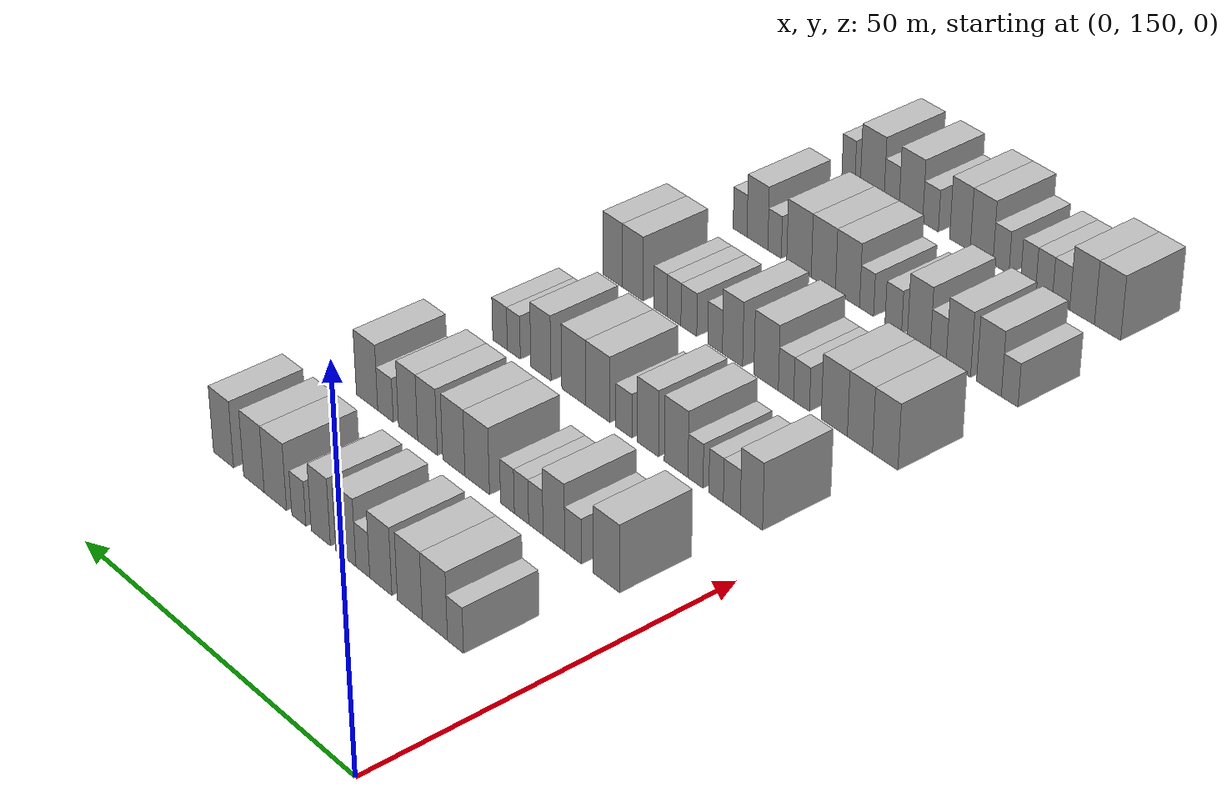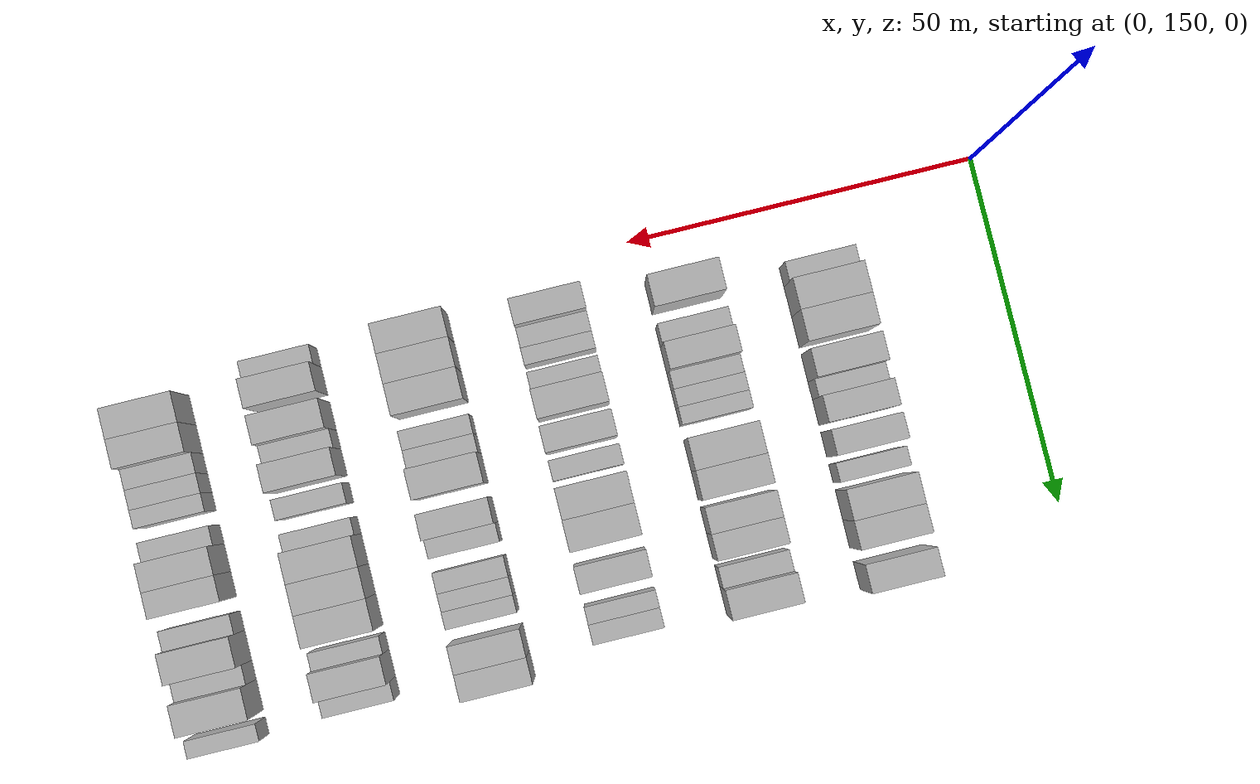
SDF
<sdf version="1.6">
 <world name="default">
  <model name="building_130">
   <static>1</static>
   <pose>25.0000 160.0737 0 0.000000 0.000000 0.000000</pose>
   <link name="link">
    <pose>0 0 3.00 0 0 0</pose>
    <collision name="collision"><geometry><box><size>10.0000 2.7606 6.0000</size></box></geometry></collision>
    <visual name="visual">
     <cast_shadows>0</cast_shadows>
     <geometry><box><size>10.0000 2.7606 6.0000</size></box></geometry>
     <material>
      <script>
       <uri>model://HANNAS_wall/materials/scripts</uri>
       <uri>model://HANNAS_wall/materials/textures</uri>
       <name>vrc/HANNAS_wall</name>
      </script>
     </material>
    </visual>
   </link>
  </model>
  <model name="building_131">
   <static>1</static>
   <pose>25.0000 163.6560 0 0.000000 0.000000 0.000000</pose>
   <link name="link">
    <pose>0 0 4.50 0 0 0</pose>
    <collision name="collision"><geometry><box><size>10.0000 4.4039 9.0000</size></box></geometry></collision>
    <visual name="visual">
     <cast_shadows>0</cast_shadows>
     <geometry><box><size>10.0000 4.4039 9.0000</size></box></geometry>
     <material>
      <script>
       <uri>model://HANNAS_wall/materials/scripts</uri>
       <uri>model://HANNAS_wall/materials/textures</uri>
       <name>vrc/HANNAS_wall</name>
      </script>
     </material>
    </visual>
   </link>
  </model>
  <model name="building_132">
   <static>1</static>
   <pose>25.0000 168.0681 0 0.000000 0.000000 0.000000</pose>
   <link name="link">
    <pose>0 0 4.50 0 0 0</pose>
    <collision name="collision"><geometry><box><size>10.0000 4.4203 9.0000</size></box></geometry></collision>
    <visual name="visual">
     <cast_shadows>0</cast_shadows>
     <geometry><box><size>10.0000 4.4203 9.0000</size></box></geometry>
     <material>
      <script>
       <uri>model://HANNAS_wall/materials/scripts</uri>
       <uri>model://HANNAS_wall/materials/textures</uri>
       <name>vrc/HANNAS_wall</name>
      </script>
     </material>
    </visual>
   </link>
  </model>
  <model name="building_133">
   <static>1</static>
   <pose>25.0000 173.2718 0 0.000000 0.000000 0.000000</pose>
   <link name="link">
    <pose>0 0 4.50 0 0 0</pose>
    <collision name="collision"><geometry><box><size>10.0000 3.9871 9.0000</size></box></geometry></collision>
    <visual name="visual">
     <cast_shadows>0</cast_shadows>
     <geometry><box><size>10.0000 3.9871 9.0000</size></box></geometry>
     <material>
      <script>
       <uri>model://HANNAS_wall/materials/scripts</uri>
       <uri>model://HANNAS_wall/materials/textures</uri>
       <name>vrc/HANNAS_wall</name>
      </script>
     </material>
    </visual>
   </link>
  </model>
  <model name="building_134">
   <static>1</static>
   <pose>25.0000 176.5370 0 0.000000 0.000000 0.000000</pose>
   <link name="link">
    <pose>0 0 3.00 0 0 0</pose>
    <collision name="collision"><geometry><box><size>10.0000 2.5433 6.0000</size></box></geometry></collision>
    <visual name="visual">
     <cast_shadows>0</cast_shadows>
     <geometry><box><size>10.0000 2.5433 6.0000</size></box></geometry>
     <material>
      <script>
       <uri>model://HANNAS_wall/materials/scripts</uri>
       <uri>model://HANNAS_wall/materials/textures</uri>
       <name>vrc/HANNAS_wall</name>
      </script>
     </material>
    </visual>
   </link>
  </model>
  <model name="building_135">
   <static>1</static>
   <pose>25.0000 179.6713 0 0.000000 0.000000 0.000000</pose>
   <link name="link">
    <pose>0 0 4.50 0 0 0</pose>
    <collision name="collision"><geometry><box><size>10.0000 3.7253 9.0000</size></box></geometry></collision>
    <visual name="visual">
     <cast_shadows>0</cast_shadows>
     <geometry><box><size>10.0000 3.7253 9.0000</size></box></geometry>
     <material>
      <script>
       <uri>model://HANNAS_wall/materials/scripts</uri>
       <uri>model://HANNAS_wall/materials/textures</uri>
       <name>vrc/HANNAS_wall</name>
      </script>
     </material>
    </visual>
   </link>
  </model>
  <model name="building_136">
   <static>1</static>
   <pose>25.0000 184.3344 0 0.000000 0.000000 0.000000</pose>
   <link name="link">
    <pose>0 0 4.50 0 0 0</pose>
    <collision name="collision"><geometry><box><size>10.0000 3.6009 9.0000</size></box></geometry></collision>
    <visual name="visual">
     <cast_shadows>0</cast_shadows>
     <geometry><box><size>10.0000 3.6009 9.0000</size></box></geometry>
     <material>
      <script>
       <uri>model://HANNAS_wall/materials/scripts</uri>
       <uri>model://HANNAS_wall/materials/textures</uri>
       <name>vrc/HANNAS_wall</name>
      </script>
     </material>
    </visual>
   </link>
  </model>
  <model name="building_137">
   <static>1</static>
   <pose>25.0000 188.4781 0 0.000000 0.000000 0.000000</pose>
   <link name="link">
    <pose>0 0 3.00 0 0 0</pose>
    <collision name="collision"><geometry><box><size>10.0000 2.6865 6.0000</size></box></geometry></collision>
    <visual name="visual">
     <cast_shadows>0</cast_shadows>
     <geometry><box><size>10.0000 2.6865 6.0000</size></box></geometry>
     <material>
      <script>
       <uri>model://HANNAS_wall/materials/scripts</uri>
       <uri>model://HANNAS_wall/materials/textures</uri>
       <name>vrc/HANNAS_wall</name>
      </script>
     </material>
    </visual>
   </link>
  </model>
  <model name="building_138">
   <static>1</static>
   <pose>25.0000 192.9859 0 0.000000 0.000000 0.000000</pose>
   <link name="link">
    <pose>0 0 4.50 0 0 0</pose>
    <collision name="collision"><geometry><box><size>10.0000 4.3290 9.0000</size></box></geometry></collision>
    <visual name="visual">
     <cast_shadows>0</cast_shadows>
     <geometry><box><size>10.0000 4.3290 9.0000</size></box></geometry>
     <material>
      <script>
       <uri>model://HANNAS_wall/materials/scripts</uri>
       <uri>model://HANNAS_wall/materials/textures</uri>
       <name>vrc/HANNAS_wall</name>
      </script>
     </material>
    </visual>
   </link>
  </model>
  <model name="building_139">
   <static>1</static>
   <pose>25.0000 197.1611 0 0.000000 0.000000 0.000000</pose>
   <link name="link">
    <pose>0 0 4.50 0 0 0</pose>
    <collision name="collision"><geometry><box><size>10.0000 4.0214 9.0000</size></box></geometry></collision>
    <visual name="visual">
     <cast_shadows>0</cast_shadows>
     <geometry><box><size>10.0000 4.0214 9.0000</size></box></geometry>
     <material>
      <script>
       <uri>model://HANNAS_wall/materials/scripts</uri>
       <uri>model://HANNAS_wall/materials/textures</uri>
       <name>vrc/HANNAS_wall</name>
      </script>
     </material>
    </visual>
   </link>
  </model>
  <model name="building_140">
   <static>1</static>
   <pose>25.0000 203.1716 0 0.000000 0.000000 0.000000</pose>
   <link name="link">
    <pose>0 0 4.50 0 0 0</pose>
    <collision name="collision"><geometry><box><size>10.0000 3.9995 9.0000</size></box></geometry></collision>
    <visual name="visual">
     <cast_shadows>0</cast_shadows>
     <geometry><box><size>10.0000 3.9995 9.0000</size></box></geometry>
     <material>
      <script>
       <uri>model://HANNAS_wall/materials/scripts</uri>
       <uri>model://HANNAS_wall/materials/textures</uri>
       <name>vrc/HANNAS_wall</name>
      </script>
     </material>
    </visual>
   </link>
  </model>
  <model name="building_295">
   <static>1</static>
   <pose>44.0000 158.5433 0 0.000000 0.000000 0.000000</pose>
   <link name="link">
    <pose>0 0 4.50 0 0 0</pose>
    <collision name="collision"><geometry><box><size>10.0000 4.4743 9.0000</size></box></geometry></collision>
    <visual name="visual">
     <cast_shadows>0</cast_shadows>
     <geometry><box><size>10.0000 4.4743 9.0000</size></box></geometry>
     <material>
      <script>
       <uri>model://HANNAS_wall/materials/scripts</uri>
       <uri>model://HANNAS_wall/materials/textures</uri>
       <name>vrc/HANNAS_wall</name>
      </script>
     </material>
    </visual>
   </link>
  </model>
  <model name="building_296">
   <static>1</static>
   <pose>44.0000 164.2271 0 0.000000 0.000000 0.000000</pose>
   <link name="link">
    <pose>0 0 3.00 0 0 0</pose>
    <collision name="collision"><geometry><box><size>10.0000 2.8933 6.0000</size></box></geometry></collision>
    <visual name="visual">
     <cast_shadows>0</cast_shadows>
     <geometry><box><size>10.0000 2.8933 6.0000</size></box></geometry>
     <material>
      <script>
       <uri>model://HANNAS_wall/materials/scripts</uri>
       <uri>model://HANNAS_wall/materials/textures</uri>
       <name>vrc/HANNAS_wall</name>
      </script>
     </material>
    </visual>
   </link>
  </model>
  <model name="building_297">
   <static>1</static>
   <pose>44.0000 167.5694 0 0.000000 0.000000 0.000000</pose>
   <link name="link">
    <pose>0 0 4.50 0 0 0</pose>
    <collision name="collision"><geometry><box><size>10.0000 3.7913 9.0000</size></box></geometry></collision>
    <visual name="visual">
     <cast_shadows>0</cast_shadows>
     <geometry><box><size>10.0000 3.7913 9.0000</size></box></geometry>
     <material>
      <script>
       <uri>model://HANNAS_wall/materials/scripts</uri>
       <uri>model://HANNAS_wall/materials/textures</uri>
       <name>vrc/HANNAS_wall</name>
      </script>
     </material>
    </visual>
   </link>
  </model>
  <model name="building_298">
   <static>1</static>
   <pose>44.0000 170.7419 0 0.000000 0.000000 0.000000</pose>
   <link name="link">
    <pose>0 0 3.00 0 0 0</pose>
    <collision name="collision"><geometry><box><size>10.0000 2.5538 6.0000</size></box></geometry></collision>
    <visual name="visual">
     <cast_shadows>0</cast_shadows>
     <geometry><box><size>10.0000 2.5538 6.0000</size></box></geometry>
     <material>
      <script>
       <uri>model://HANNAS_wall/materials/scripts</uri>
       <uri>model://HANNAS_wall/materials/textures</uri>
       <name>vrc/HANNAS_wall</name>
      </script>
     </material>
    </visual>
   </link>
  </model>
  <model name="building_299">
   <static>1</static>
   <pose>44.0000 173.2871 0 0.000000 0.000000 0.000000</pose>
   <link name="link">
    <pose>0 0 3.00 0 0 0</pose>
    <collision name="collision"><geometry><box><size>10.0000 2.5365 6.0000</size></box></geometry></collision>
    <visual name="visual">
     <cast_shadows>0</cast_shadows>
     <geometry><box><size>10.0000 2.5365 6.0000</size></box></geometry>
     <material>
      <script>
       <uri>model://HANNAS_wall/materials/scripts</uri>
       <uri>model://HANNAS_wall/materials/textures</uri>
       <name>vrc/HANNAS_wall</name>
      </script>
     </material>
    </visual>
   </link>
  </model>
  <model name="building_300">
   <static>1</static>
   <pose>44.0000 175.7900 0 0.000000 0.000000 0.000000</pose>
   <link name="link">
    <pose>0 0 3.00 0 0 0</pose>
    <collision name="collision"><geometry><box><size>10.0000 2.4693 6.0000</size></box></geometry></collision>
    <visual name="visual">
     <cast_shadows>0</cast_shadows>
     <geometry><box><size>10.0000 2.4693 6.0000</size></box></geometry>
     <material>
      <script>
       <uri>model://HANNAS_wall/materials/scripts</uri>
       <uri>model://HANNAS_wall/materials/textures</uri>
       <name>vrc/HANNAS_wall</name>
      </script>
     </material>
    </visual>
   </link>
  </model>
  <model name="building_301">
   <static>1</static>
   <pose>44.0000 181.2689 0 0.000000 0.000000 0.000000</pose>
   <link name="link">
    <pose>0 0 4.50 0 0 0</pose>
    <collision name="collision"><geometry><box><size>10.0000 4.4886 9.0000</size></box></geometry></collision>
    <visual name="visual">
     <cast_shadows>0</cast_shadows>
     <geometry><box><size>10.0000 4.4886 9.0000</size></box></geometry>
     <material>
      <script>
       <uri>model://HANNAS_wall/materials/scripts</uri>
       <uri>model://HANNAS_wall/materials/textures</uri>
       <name>vrc/HANNAS_wall</name>
      </script>
     </material>
    </visual>
   </link>
  </model>
  <model name="building_302">
   <static>1</static>
   <pose>44.0000 185.5747 0 0.000000 0.000000 0.000000</pose>
   <link name="link">
    <pose>0 0 4.50 0 0 0</pose>
    <collision name="collision"><geometry><box><size>10.0000 4.1229 9.0000</size></box></geometry></collision>
    <visual name="visual">
     <cast_shadows>0</cast_shadows>
     <geometry><box><size>10.0000 4.1229 9.0000</size></box></geometry>
     <material>
      <script>
       <uri>model://HANNAS_wall/materials/scripts</uri>
       <uri>model://HANNAS_wall/materials/textures</uri>
       <name>vrc/HANNAS_wall</name>
      </script>
     </material>
    </visual>
   </link>
  </model>
  <model name="building_303">
   <static>1</static>
   <pose>44.0000 190.4821 0 0.000000 0.000000 0.000000</pose>
   <link name="link">
    <pose>0 0 4.50 0 0 0</pose>
    <collision name="collision"><geometry><box><size>10.0000 3.6920 9.0000</size></box></geometry></collision>
    <visual name="visual">
     <cast_shadows>0</cast_shadows>
     <geometry><box><size>10.0000 3.6920 9.0000</size></box></geometry>
     <material>
      <script>
       <uri>model://HANNAS_wall/materials/scripts</uri>
       <uri>model://HANNAS_wall/materials/textures</uri>
       <name>vrc/HANNAS_wall</name>
      </script>
     </material>
    </visual>
   </link>
  </model>
  <model name="building_304">
   <static>1</static>
   <pose>44.0000 194.1616 0 0.000000 0.000000 0.000000</pose>
   <link name="link">
    <pose>0 0 4.50 0 0 0</pose>
    <collision name="collision"><geometry><box><size>10.0000 3.6670 9.0000</size></box></geometry></collision>
    <visual name="visual">
     <cast_shadows>0</cast_shadows>
     <geometry><box><size>10.0000 3.6670 9.0000</size></box></geometry>
     <material>
      <script>
       <uri>model://HANNAS_wall/materials/scripts</uri>
       <uri>model://HANNAS_wall/materials/textures</uri>
       <name>vrc/HANNAS_wall</name>
      </script>
     </material>
    </visual>
   </link>
  </model>
  <model name="building_305">
   <static>1</static>
   <pose>44.0000 198.4948 0 0.000000 0.000000 0.000000</pose>
   <link name="link">
    <pose>0 0 3.00 0 0 0</pose>
    <collision name="collision"><geometry><box><size>10.0000 2.9994 6.0000</size></box></geometry></collision>
    <visual name="visual">
     <cast_shadows>0</cast_shadows>
     <geometry><box><size>10.0000 2.9994 6.0000</size></box></geometry>
     <material>
      <script>
       <uri>model://HANNAS_wall/materials/scripts</uri>
       <uri>model://HANNAS_wall/materials/textures</uri>
       <name>vrc/HANNAS_wall</name>
      </script>
     </material>
    </visual>
   </link>
  </model>
  <model name="building_306">
   <static>1</static>
   <pose>44.0000 202.0792 0 0.000000 0.000000 0.000000</pose>
   <link name="link">
    <pose>0 0 4.50 0 0 0</pose>
    <collision name="collision"><geometry><box><size>10.0000 4.1694 9.0000</size></box></geometry></collision>
    <visual name="visual">
     <cast_shadows>0</cast_shadows>
     <geometry><box><size>10.0000 4.1694 9.0000</size></box></geometry>
     <material>
      <script>
       <uri>model://HANNAS_wall/materials/scripts</uri>
       <uri>model://HANNAS_wall/materials/textures</uri>
       <name>vrc/HANNAS_wall</name>
      </script>
     </material>
    </visual>
   </link>
  </model>
  <model name="building_460">
   <static>1</static>
   <pose>63.0000 156.8422 0 0.000000 0.000000 0.000000</pose>
   <link name="link">
    <pose>0 0 4.50 0 0 0</pose>
    <collision name="collision"><geometry><box><size>10.0000 3.7008 9.0000</size></box></geometry></collision>
    <visual name="visual">
     <cast_shadows>0</cast_shadows>
     <geometry><box><size>10.0000 3.7008 9.0000</size></box></geometry>
     <material>
      <script>
       <uri>model://HANNAS_wall/materials/scripts</uri>
       <uri>model://HANNAS_wall/materials/textures</uri>
       <name>vrc/HANNAS_wall</name>
      </script>
     </material>
    </visual>
   </link>
  </model>
  <model name="building_461">
   <static>1</static>
   <pose>63.0000 160.1163 0 0.000000 0.000000 0.000000</pose>
   <link name="link">
    <pose>0 0 3.00 0 0 0</pose>
    <collision name="collision"><geometry><box><size>10.0000 2.8475 6.0000</size></box></geometry></collision>
    <visual name="visual">
     <cast_shadows>0</cast_shadows>
     <geometry><box><size>10.0000 2.8475 6.0000</size></box></geometry>
     <material>
      <script>
       <uri>model://HANNAS_wall/materials/scripts</uri>
       <uri>model://HANNAS_wall/materials/textures</uri>
       <name>vrc/HANNAS_wall</name>
      </script>
     </material>
    </visual>
   </link>
  </model>
  <model name="building_462">
   <static>1</static>
   <pose>63.0000 162.7618 0 0.000000 0.000000 0.000000</pose>
   <link name="link">
    <pose>0 0 3.00 0 0 0</pose>
    <collision name="collision"><geometry><box><size>10.0000 2.4435 6.0000</size></box></geometry></collision>
    <visual name="visual">
     <cast_shadows>0</cast_shadows>
     <geometry><box><size>10.0000 2.4435 6.0000</size></box></geometry>
     <material>
      <script>
       <uri>model://HANNAS_wall/materials/scripts</uri>
       <uri>model://HANNAS_wall/materials/textures</uri>
       <name>vrc/HANNAS_wall</name>
      </script>
     </material>
    </visual>
   </link>
  </model>
  <model name="building_463">
   <static>1</static>
   <pose>63.0000 166.2707 0 0.000000 0.000000 0.000000</pose>
   <link name="link">
    <pose>0 0 3.00 0 0 0</pose>
    <collision name="collision"><geometry><box><size>10.0000 2.5743 6.0000</size></box></geometry></collision>
    <visual name="visual">
     <cast_shadows>0</cast_shadows>
     <geometry><box><size>10.0000 2.5743 6.0000</size></box></geometry>
     <material>
      <script>
       <uri>model://HANNAS_wall/materials/scripts</uri>
       <uri>model://HANNAS_wall/materials/textures</uri>
       <name>vrc/HANNAS_wall</name>
      </script>
     </material>
    </visual>
   </link>
  </model>
  <model name="building_464">
   <static>1</static>
   <pose>63.0000 169.6194 0 0.000000 0.000000 0.000000</pose>
   <link name="link">
    <pose>0 0 4.50 0 0 0</pose>
    <collision name="collision"><geometry><box><size>10.0000 4.1231 9.0000</size></box></geometry></collision>
    <visual name="visual">
     <cast_shadows>0</cast_shadows>
     <geometry><box><size>10.0000 4.1231 9.0000</size></box></geometry>
     <material>
      <script>
       <uri>model://HANNAS_wall/materials/scripts</uri>
       <uri>model://HANNAS_wall/materials/textures</uri>
       <name>vrc/HANNAS_wall</name>
      </script>
     </material>
    </visual>
   </link>
  </model>
  <model name="building_465">
   <static>1</static>
   <pose>63.0000 174.5357 0 0.000000 0.000000 0.000000</pose>
   <link name="link">
    <pose>0 0 4.50 0 0 0</pose>
    <collision name="collision"><geometry><box><size>10.0000 3.7095 9.0000</size></box></geometry></collision>
    <visual name="visual">
     <cast_shadows>0</cast_shadows>
     <geometry><box><size>10.0000 3.7095 9.0000</size></box></geometry>
     <material>
      <script>
       <uri>model://HANNAS_wall/materials/scripts</uri>
       <uri>model://HANNAS_wall/materials/textures</uri>
       <name>vrc/HANNAS_wall</name>
      </script>
     </material>
    </visual>
   </link>
  </model>
  <model name="building_466">
   <static>1</static>
   <pose>63.0000 178.8409 0 0.000000 0.000000 0.000000</pose>
   <link name="link">
    <pose>0 0 3.00 0 0 0</pose>
    <collision name="collision"><geometry><box><size>10.0000 2.9010 6.0000</size></box></geometry></collision>
    <visual name="visual">
     <cast_shadows>0</cast_shadows>
     <geometry><box><size>10.0000 2.9010 6.0000</size></box></geometry>
     <material>
      <script>
       <uri>model://HANNAS_wall/materials/scripts</uri>
       <uri>model://HANNAS_wall/materials/textures</uri>
       <name>vrc/HANNAS_wall</name>
      </script>
     </material>
    </visual>
   </link>
  </model>
  <model name="building_467">
   <static>1</static>
   <pose>63.0000 183.5017 0 0.000000 0.000000 0.000000</pose>
   <link name="link">
    <pose>0 0 4.50 0 0 0</pose>
    <collision name="collision"><geometry><box><size>10.0000 4.4205 9.0000</size></box></geometry></collision>
    <visual name="visual">
     <cast_shadows>0</cast_shadows>
     <geometry><box><size>10.0000 4.4205 9.0000</size></box></geometry>
     <material>
      <script>
       <uri>model://HANNAS_wall/materials/scripts</uri>
       <uri>model://HANNAS_wall/materials/textures</uri>
       <name>vrc/HANNAS_wall</name>
      </script>
     </material>
    </visual>
   </link>
  </model>
  <model name="building_468">
   <static>1</static>
   <pose>63.0000 187.9160 0 0.000000 0.000000 0.000000</pose>
   <link name="link">
    <pose>0 0 4.50 0 0 0</pose>
    <collision name="collision"><geometry><box><size>10.0000 4.4083 9.0000</size></box></geometry></collision>
    <visual name="visual">
     <cast_shadows>0</cast_shadows>
     <geometry><box><size>10.0000 4.4083 9.0000</size></box></geometry>
     <material>
      <script>
       <uri>model://HANNAS_wall/materials/scripts</uri>
       <uri>model://HANNAS_wall/materials/textures</uri>
       <name>vrc/HANNAS_wall</name>
      </script>
     </material>
    </visual>
   </link>
  </model>
  <model name="building_469">
   <static>1</static>
   <pose>63.0000 194.0068 0 0.000000 0.000000 0.000000</pose>
   <link name="link">
    <pose>0 0 4.50 0 0 0</pose>
    <collision name="collision"><geometry><box><size>10.0000 3.7733 9.0000</size></box></geometry></collision>
    <visual name="visual">
     <cast_shadows>0</cast_shadows>
     <geometry><box><size>10.0000 3.7733 9.0000</size></box></geometry>
     <material>
      <script>
       <uri>model://HANNAS_wall/materials/scripts</uri>
       <uri>model://HANNAS_wall/materials/textures</uri>
       <name>vrc/HANNAS_wall</name>
      </script>
     </material>
    </visual>
   </link>
  </model>
  <model name="building_470">
   <static>1</static>
   <pose>63.0000 199.1327 0 0.000000 0.000000 0.000000</pose>
   <link name="link">
    <pose>0 0 3.00 0 0 0</pose>
    <collision name="collision"><geometry><box><size>10.0000 2.4784 6.0000</size></box></geometry></collision>
    <visual name="visual">
     <cast_shadows>0</cast_shadows>
     <geometry><box><size>10.0000 2.4784 6.0000</size></box></geometry>
     <material>
      <script>
       <uri>model://HANNAS_wall/materials/scripts</uri>
       <uri>model://HANNAS_wall/materials/textures</uri>
       <name>vrc/HANNAS_wall</name>
      </script>
     </material>
    </visual>
   </link>
  </model>
  <model name="building_471">
   <static>1</static>
   <pose>63.0000 201.7698 0 0.000000 0.000000 0.000000</pose>
   <link name="link">
    <pose>0 0 3.00 0 0 0</pose>
    <collision name="collision"><geometry><box><size>10.0000 2.7958 6.0000</size></box></geometry></collision>
    <visual name="visual">
     <cast_shadows>0</cast_shadows>
     <geometry><box><size>10.0000 2.7958 6.0000</size></box></geometry>
     <material>
      <script>
       <uri>model://HANNAS_wall/materials/scripts</uri>
       <uri>model://HANNAS_wall/materials/textures</uri>
       <name>vrc/HANNAS_wall</name>
      </script>
     </material>
    </visual>
   </link>
  </model>
  <model name="building_627">
   <static>1</static>
   <pose>82.0000 155.8812 0 0.000000 0.000000 0.000000</pose>
   <link name="link">
    <pose>0 0 4.50 0 0 0</pose>
    <collision name="collision"><geometry><box><size>10.0000 4.1823 9.0000</size></box></geometry></collision>
    <visual name="visual">
     <cast_shadows>0</cast_shadows>
     <geometry><box><size>10.0000 4.1823 9.0000</size></box></geometry>
     <material>
      <script>
       <uri>model://HANNAS_wall/materials/scripts</uri>
       <uri>model://HANNAS_wall/materials/textures</uri>
       <name>vrc/HANNAS_wall</name>
      </script>
     </material>
    </visual>
   </link>
  </model>
  <model name="building_628">
   <static>1</static>
   <pose>82.0000 160.0679 0 0.000000 0.000000 0.000000</pose>
   <link name="link">
    <pose>0 0 4.50 0 0 0</pose>
    <collision name="collision"><geometry><box><size>10.0000 4.1911 9.0000</size></box></geometry></collision>
    <visual name="visual">
     <cast_shadows>0</cast_shadows>
     <geometry><box><size>10.0000 4.1911 9.0000</size></box></geometry>
     <material>
      <script>
       <uri>model://HANNAS_wall/materials/scripts</uri>
       <uri>model://HANNAS_wall/materials/textures</uri>
       <name>vrc/HANNAS_wall</name>
      </script>
     </material>
    </visual>
   </link>
  </model>
  <model name="building_629">
   <static>1</static>
   <pose>82.0000 164.3750 0 0.000000 0.000000 0.000000</pose>
   <link name="link">
    <pose>0 0 4.50 0 0 0</pose>
    <collision name="collision"><geometry><box><size>10.0000 4.4231 9.0000</size></box></geometry></collision>
    <visual name="visual">
     <cast_shadows>0</cast_shadows>
     <geometry><box><size>10.0000 4.4231 9.0000</size></box></geometry>
     <material>
      <script>
       <uri>model://HANNAS_wall/materials/scripts</uri>
       <uri>model://HANNAS_wall/materials/textures</uri>
       <name>vrc/HANNAS_wall</name>
      </script>
     </material>
    </visual>
   </link>
  </model>
  <model name="building_630">
   <static>1</static>
   <pose>82.0000 169.9448 0 0.000000 0.000000 0.000000</pose>
   <link name="link">
    <pose>0 0 3.00 0 0 0</pose>
    <collision name="collision"><geometry><box><size>10.0000 2.7163 6.0000</size></box></geometry></collision>
    <visual name="visual">
     <cast_shadows>0</cast_shadows>
     <geometry><box><size>10.0000 2.7163 6.0000</size></box></geometry>
     <material>
      <script>
       <uri>model://HANNAS_wall/materials/scripts</uri>
       <uri>model://HANNAS_wall/materials/textures</uri>
       <name>vrc/HANNAS_wall</name>
      </script>
     </material>
    </visual>
   </link>
  </model>
  <model name="building_631">
   <static>1</static>
   <pose>82.0000 172.6292 0 0.000000 0.000000 0.000000</pose>
   <link name="link">
    <pose>0 0 3.00 0 0 0</pose>
    <collision name="collision"><geometry><box><size>10.0000 2.6524 6.0000</size></box></geometry></collision>
    <visual name="visual">
     <cast_shadows>0</cast_shadows>
     <geometry><box><size>10.0000 2.6524 6.0000</size></box></geometry>
     <material>
      <script>
       <uri>model://HANNAS_wall/materials/scripts</uri>
       <uri>model://HANNAS_wall/materials/textures</uri>
       <name>vrc/HANNAS_wall</name>
      </script>
     </material>
    </visual>
   </link>
  </model>
  <model name="building_632">
   <static>1</static>
   <pose>82.0000 176.0989 0 0.000000 0.000000 0.000000</pose>
   <link name="link">
    <pose>0 0 4.50 0 0 0</pose>
    <collision name="collision"><geometry><box><size>10.0000 4.2869 9.0000</size></box></geometry></collision>
    <visual name="visual">
     <cast_shadows>0</cast_shadows>
     <geometry><box><size>10.0000 4.2869 9.0000</size></box></geometry>
     <material>
      <script>
       <uri>model://HANNAS_wall/materials/scripts</uri>
       <uri>model://HANNAS_wall/materials/textures</uri>
       <name>vrc/HANNAS_wall</name>
      </script>
     </material>
    </visual>
   </link>
  </model>
  <model name="building_633">
   <static>1</static>
   <pose>82.0000 182.0456 0 0.000000 0.000000 0.000000</pose>
   <link name="link">
    <pose>0 0 4.50 0 0 0</pose>
    <collision name="collision"><geometry><box><size>10.0000 3.6066 9.0000</size></box></geometry></collision>
    <visual name="visual">
     <cast_shadows>0</cast_shadows>
     <geometry><box><size>10.0000 3.6066 9.0000</size></box></geometry>
     <material>
      <script>
       <uri>model://HANNAS_wall/materials/scripts</uri>
       <uri>model://HANNAS_wall/materials/textures</uri>
       <name>vrc/HANNAS_wall</name>
      </script>
     </material>
    </visual>
   </link>
  </model>
  <model name="building_634">
   <static>1</static>
   <pose>82.0000 185.1649 0 0.000000 0.000000 0.000000</pose>
   <link name="link">
    <pose>0 0 3.00 0 0 0</pose>
    <collision name="collision"><geometry><box><size>10.0000 2.6319 6.0000</size></box></geometry></collision>
    <visual name="visual">
     <cast_shadows>0</cast_shadows>
     <geometry><box><size>10.0000 2.6319 6.0000</size></box></geometry>
     <material>
      <script>
       <uri>model://HANNAS_wall/materials/scripts</uri>
       <uri>model://HANNAS_wall/materials/textures</uri>
       <name>vrc/HANNAS_wall</name>
      </script>
     </material>
    </visual>
   </link>
  </model>
  <model name="building_635">
   <static>1</static>
   <pose>82.0000 189.9319 0 0.000000 0.000000 0.000000</pose>
   <link name="link">
    <pose>0 0 3.00 0 0 0</pose>
    <collision name="collision"><geometry><box><size>10.0000 2.9021 6.0000</size></box></geometry></collision>
    <visual name="visual">
     <cast_shadows>0</cast_shadows>
     <geometry><box><size>10.0000 2.9021 6.0000</size></box></geometry>
     <material>
      <script>
       <uri>model://HANNAS_wall/materials/scripts</uri>
       <uri>model://HANNAS_wall/materials/textures</uri>
       <name>vrc/HANNAS_wall</name>
      </script>
     </material>
    </visual>
   </link>
  </model>
  <model name="building_636">
   <static>1</static>
   <pose>82.0000 192.6508 0 0.000000 0.000000 0.000000</pose>
   <link name="link">
    <pose>0 0 3.00 0 0 0</pose>
    <collision name="collision"><geometry><box><size>10.0000 2.5356 6.0000</size></box></geometry></collision>
    <visual name="visual">
     <cast_shadows>0</cast_shadows>
     <geometry><box><size>10.0000 2.5356 6.0000</size></box></geometry>
     <material>
      <script>
       <uri>model://HANNAS_wall/materials/scripts</uri>
       <uri>model://HANNAS_wall/materials/textures</uri>
       <name>vrc/HANNAS_wall</name>
      </script>
     </material>
    </visual>
   </link>
  </model>
  <model name="building_637">
   <static>1</static>
   <pose>82.0000 195.1428 0 0.000000 0.000000 0.000000</pose>
   <link name="link">
    <pose>0 0 3.00 0 0 0</pose>
    <collision name="collision"><geometry><box><size>10.0000 2.4484 6.0000</size></box></geometry></collision>
    <visual name="visual">
     <cast_shadows>0</cast_shadows>
     <geometry><box><size>10.0000 2.4484 6.0000</size></box></geometry>
     <material>
      <script>
       <uri>model://HANNAS_wall/materials/scripts</uri>
       <uri>model://HANNAS_wall/materials/textures</uri>
       <name>vrc/HANNAS_wall</name>
      </script>
     </material>
    </visual>
   </link>
  </model>
  <model name="building_638">
   <static>1</static>
   <pose>82.0000 200.3270 0 0.000000 0.000000 0.000000</pose>
   <link name="link">
    <pose>0 0 4.50 0 0 0</pose>
    <collision name="collision"><geometry><box><size>10.0000 3.9200 9.0000</size></box></geometry></collision>
    <visual name="visual">
     <cast_shadows>0</cast_shadows>
     <geometry><box><size>10.0000 3.9200 9.0000</size></box></geometry>
     <material>
      <script>
       <uri>model://HANNAS_wall/materials/scripts</uri>
       <uri>model://HANNAS_wall/materials/textures</uri>
       <name>vrc/HANNAS_wall</name>
      </script>
     </material>
    </visual>
   </link>
  </model>
  <model name="building_639">
   <static>1</static>
   <pose>82.0000 204.1438 0 0.000000 0.000000 0.000000</pose>
   <link name="link">
    <pose>0 0 4.50 0 0 0</pose>
    <collision name="collision"><geometry><box><size>10.0000 3.7137 9.0000</size></box></geometry></collision>
    <visual name="visual">
     <cast_shadows>0</cast_shadows>
     <geometry><box><size>10.0000 3.7137 9.0000</size></box></geometry>
     <material>
      <script>
       <uri>model://HANNAS_wall/materials/scripts</uri>
       <uri>model://HANNAS_wall/materials/textures</uri>
       <name>vrc/HANNAS_wall</name>
      </script>
     </material>
    </visual>
   </link>
  </model>
  <model name="building_800">
   <static>1</static>
   <pose>101.0000 155.4235 0 0.000000 0.000000 0.000000</pose>
   <link name="link">
    <pose>0 0 3.00 0 0 0</pose>
    <collision name="collision"><geometry><box><size>10.0000 2.7149 6.0000</size></box></geometry></collision>
    <visual name="visual">
     <cast_shadows>0</cast_shadows>
     <geometry><box><size>10.0000 2.7149 6.0000</size></box></geometry>
     <material>
      <script>
       <uri>model://HANNAS_wall/materials/scripts</uri>
       <uri>model://HANNAS_wall/materials/textures</uri>
       <name>vrc/HANNAS_wall</name>
      </script>
     </material>
    </visual>
   </link>
  </model>
  <model name="building_801">
   <static>1</static>
   <pose>101.0000 158.8174 0 0.000000 0.000000 0.000000</pose>
   <link name="link">
    <pose>0 0 4.50 0 0 0</pose>
    <collision name="collision"><geometry><box><size>10.0000 4.0728 9.0000</size></box></geometry></collision>
    <visual name="visual">
     <cast_shadows>0</cast_shadows>
     <geometry><box><size>10.0000 4.0728 9.0000</size></box></geometry>
     <material>
      <script>
       <uri>model://HANNAS_wall/materials/scripts</uri>
       <uri>model://HANNAS_wall/materials/textures</uri>
       <name>vrc/HANNAS_wall</name>
      </script>
     </material>
    </visual>
   </link>
  </model>
  <model name="building_802">
   <static>1</static>
   <pose>101.0000 163.8946 0 0.000000 0.000000 0.000000</pose>
   <link name="link">
    <pose>0 0 4.50 0 0 0</pose>
    <collision name="collision"><geometry><box><size>10.0000 4.0817 9.0000</size></box></geometry></collision>
    <visual name="visual">
     <cast_shadows>0</cast_shadows>
     <geometry><box><size>10.0000 4.0817 9.0000</size></box></geometry>
     <material>
      <script>
       <uri>model://HANNAS_wall/materials/scripts</uri>
       <uri>model://HANNAS_wall/materials/textures</uri>
       <name>vrc/HANNAS_wall</name>
      </script>
     </material>
    </visual>
   </link>
  </model>
  <model name="building_803">
   <static>1</static>
   <pose>101.0000 167.2935 0 0.000000 0.000000 0.000000</pose>
   <link name="link">
    <pose>0 0 3.00 0 0 0</pose>
    <collision name="collision"><geometry><box><size>10.0000 2.7161 6.0000</size></box></geometry></collision>
    <visual name="visual">
     <cast_shadows>0</cast_shadows>
     <geometry><box><size>10.0000 2.7161 6.0000</size></box></geometry>
     <material>
      <script>
       <uri>model://HANNAS_wall/materials/scripts</uri>
       <uri>model://HANNAS_wall/materials/textures</uri>
       <name>vrc/HANNAS_wall</name>
      </script>
     </material>
    </visual>
   </link>
  </model>
  <model name="building_804">
   <static>1</static>
   <pose>101.0000 170.5975 0 0.000000 0.000000 0.000000</pose>
   <link name="link">
    <pose>0 0 4.50 0 0 0</pose>
    <collision name="collision"><geometry><box><size>10.0000 3.8918 9.0000</size></box></geometry></collision>
    <visual name="visual">
     <cast_shadows>0</cast_shadows>
     <geometry><box><size>10.0000 3.8918 9.0000</size></box></geometry>
     <material>
      <script>
       <uri>model://HANNAS_wall/materials/scripts</uri>
       <uri>model://HANNAS_wall/materials/textures</uri>
       <name>vrc/HANNAS_wall</name>
      </script>
     </material>
    </visual>
   </link>
  </model>
  <model name="building_805">
   <static>1</static>
   <pose>101.0000 174.9763 0 0.000000 0.000000 0.000000</pose>
   <link name="link">
    <pose>0 0 3.00 0 0 0</pose>
    <collision name="collision"><geometry><box><size>10.0000 2.8659 6.0000</size></box></geometry></collision>
    <visual name="visual">
     <cast_shadows>0</cast_shadows>
     <geometry><box><size>10.0000 2.8659 6.0000</size></box></geometry>
     <material>
      <script>
       <uri>model://HANNAS_wall/materials/scripts</uri>
       <uri>model://HANNAS_wall/materials/textures</uri>
       <name>vrc/HANNAS_wall</name>
      </script>
     </material>
    </visual>
   </link>
  </model>
  <model name="building_806">
   <static>1</static>
   <pose>101.0000 179.6435 0 0.000000 0.000000 0.000000</pose>
   <link name="link">
    <pose>0 0 3.00 0 0 0</pose>
    <collision name="collision"><geometry><box><size>10.0000 2.4685 6.0000</size></box></geometry></collision>
    <visual name="visual">
     <cast_shadows>0</cast_shadows>
     <geometry><box><size>10.0000 2.4685 6.0000</size></box></geometry>
     <material>
      <script>
       <uri>model://HANNAS_wall/materials/scripts</uri>
       <uri>model://HANNAS_wall/materials/textures</uri>
       <name>vrc/HANNAS_wall</name>
      </script>
     </material>
    </visual>
   </link>
  </model>
  <model name="building_807">
   <static>1</static>
   <pose>101.0000 183.0228 0 0.000000 0.000000 0.000000</pose>
   <link name="link">
    <pose>0 0 4.50 0 0 0</pose>
    <collision name="collision"><geometry><box><size>10.0000 4.2901 9.0000</size></box></geometry></collision>
    <visual name="visual">
     <cast_shadows>0</cast_shadows>
     <geometry><box><size>10.0000 4.2901 9.0000</size></box></geometry>
     <material>
      <script>
       <uri>model://HANNAS_wall/materials/scripts</uri>
       <uri>model://HANNAS_wall/materials/textures</uri>
       <name>vrc/HANNAS_wall</name>
      </script>
     </material>
    </visual>
   </link>
  </model>
  <model name="building_808">
   <static>1</static>
   <pose>101.0000 187.3431 0 0.000000 0.000000 0.000000</pose>
   <link name="link">
    <pose>0 0 4.50 0 0 0</pose>
    <collision name="collision"><geometry><box><size>10.0000 4.3505 9.0000</size></box></geometry></collision>
    <visual name="visual">
     <cast_shadows>0</cast_shadows>
     <geometry><box><size>10.0000 4.3505 9.0000</size></box></geometry>
     <material>
      <script>
       <uri>model://HANNAS_wall/materials/scripts</uri>
       <uri>model://HANNAS_wall/materials/textures</uri>
       <name>vrc/HANNAS_wall</name>
      </script>
     </material>
    </visual>
   </link>
  </model>
  <model name="building_809">
   <static>1</static>
   <pose>101.0000 191.7474 0 0.000000 0.000000 0.000000</pose>
   <link name="link">
    <pose>0 0 4.50 0 0 0</pose>
    <collision name="collision"><geometry><box><size>10.0000 4.4580 9.0000</size></box></geometry></collision>
    <visual name="visual">
     <cast_shadows>0</cast_shadows>
     <geometry><box><size>10.0000 4.4580 9.0000</size></box></geometry>
     <material>
      <script>
       <uri>model://HANNAS_wall/materials/scripts</uri>
       <uri>model://HANNAS_wall/materials/textures</uri>
       <name>vrc/HANNAS_wall</name>
      </script>
     </material>
    </visual>
   </link>
  </model>
  <model name="building_810">
   <static>1</static>
   <pose>101.0000 196.2213 0 0.000000 0.000000 0.000000</pose>
   <link name="link">
    <pose>0 0 3.00 0 0 0</pose>
    <collision name="collision"><geometry><box><size>10.0000 2.4897 6.0000</size></box></geometry></collision>
    <visual name="visual">
     <cast_shadows>0</cast_shadows>
     <geometry><box><size>10.0000 2.4897 6.0000</size></box></geometry>
     <material>
      <script>
       <uri>model://HANNAS_wall/materials/scripts</uri>
       <uri>model://HANNAS_wall/materials/textures</uri>
       <name>vrc/HANNAS_wall</name>
      </script>
     </material>
    </visual>
   </link>
  </model>
  <model name="building_811">
   <static>1</static>
   <pose>101.0000 199.4123 0 0.000000 0.000000 0.000000</pose>
   <link name="link">
    <pose>0 0 4.50 0 0 0</pose>
    <collision name="collision"><geometry><box><size>10.0000 3.8923 9.0000</size></box></geometry></collision>
    <visual name="visual">
     <cast_shadows>0</cast_shadows>
     <geometry><box><size>10.0000 3.8923 9.0000</size></box></geometry>
     <material>
      <script>
       <uri>model://HANNAS_wall/materials/scripts</uri>
       <uri>model://HANNAS_wall/materials/textures</uri>
       <name>vrc/HANNAS_wall</name>
      </script>
     </material>
    </visual>
   </link>
  </model>
  <model name="building_812">
   <static>1</static>
   <pose>101.0000 202.6496 0 0.000000 0.000000 0.000000</pose>
   <link name="link">
    <pose>0 0 3.00 0 0 0</pose>
    <collision name="collision"><geometry><box><size>10.0000 2.5822 6.0000</size></box></geometry></collision>
    <visual name="visual">
     <cast_shadows>0</cast_shadows>
     <geometry><box><size>10.0000 2.5822 6.0000</size></box></geometry>
     <material>
      <script>
       <uri>model://HANNAS_wall/materials/scripts</uri>
       <uri>model://HANNAS_wall/materials/textures</uri>
       <name>vrc/HANNAS_wall</name>
      </script>
     </material>
    </visual>
   </link>
  </model>
  <model name="building_979">
   <static>1</static>
   <pose>120.0000 158.3372 0 0.000000 0.000000 0.000000</pose>
   <link name="link">
    <pose>0 0 4.50 0 0 0</pose>
    <collision name="collision"><geometry><box><size>10.0000 4.2939 9.0000</size></box></geometry></collision>
    <visual name="visual">
     <cast_shadows>0</cast_shadows>
     <geometry><box><size>10.0000 4.2939 9.0000</size></box></geometry>
     <material>
      <script>
       <uri>model://HANNAS_wall/materials/scripts</uri>
       <uri>model://HANNAS_wall/materials/textures</uri>
       <name>vrc/HANNAS_wall</name>
      </script>
     </material>
    </visual>
   </link>
  </model>
  <model name="building_980">
   <static>1</static>
   <pose>120.0000 162.5419 0 0.000000 0.000000 0.000000</pose>
   <link name="link">
    <pose>0 0 4.50 0 0 0</pose>
    <collision name="collision"><geometry><box><size>10.0000 4.1153 9.0000</size></box></geometry></collision>
    <visual name="visual">
     <cast_shadows>0</cast_shadows>
     <geometry><box><size>10.0000 4.1153 9.0000</size></box></geometry>
     <material>
      <script>
       <uri>model://HANNAS_wall/materials/scripts</uri>
       <uri>model://HANNAS_wall/materials/textures</uri>
       <name>vrc/HANNAS_wall</name>
      </script>
     </material>
    </visual>
   </link>
  </model>
  <model name="building_981">
   <static>1</static>
   <pose>120.0000 166.0457 0 0.000000 0.000000 0.000000</pose>
   <link name="link">
    <pose>0 0 3.00 0 0 0</pose>
    <collision name="collision"><geometry><box><size>10.0000 2.8923 6.0000</size></box></geometry></collision>
    <visual name="visual">
     <cast_shadows>0</cast_shadows>
     <geometry><box><size>10.0000 2.8923 6.0000</size></box></geometry>
     <material>
      <script>
       <uri>model://HANNAS_wall/materials/scripts</uri>
       <uri>model://HANNAS_wall/materials/textures</uri>
       <name>vrc/HANNAS_wall</name>
      </script>
     </material>
    </visual>
   </link>
  </model>
  <model name="building_982">
   <static>1</static>
   <pose>120.0000 168.8961 0 0.000000 0.000000 0.000000</pose>
   <link name="link">
    <pose>0 0 3.00 0 0 0</pose>
    <collision name="collision"><geometry><box><size>10.0000 2.8085 6.0000</size></box></geometry></collision>
    <visual name="visual">
     <cast_shadows>0</cast_shadows>
     <geometry><box><size>10.0000 2.8085 6.0000</size></box></geometry>
     <material>
      <script>
       <uri>model://HANNAS_wall/materials/scripts</uri>
       <uri>model://HANNAS_wall/materials/textures</uri>
       <name>vrc/HANNAS_wall</name>
      </script>
     </material>
    </visual>
   </link>
  </model>
  <model name="building_983">
   <static>1</static>
   <pose>120.0000 171.5918 0 0.000000 0.000000 0.000000</pose>
   <link name="link">
    <pose>0 0 3.00 0 0 0</pose>
    <collision name="collision"><geometry><box><size>10.0000 2.5831 6.0000</size></box></geometry></collision>
    <visual name="visual">
     <cast_shadows>0</cast_shadows>
     <geometry><box><size>10.0000 2.5831 6.0000</size></box></geometry>
     <material>
      <script>
       <uri>model://HANNAS_wall/materials/scripts</uri>
       <uri>model://HANNAS_wall/materials/textures</uri>
       <name>vrc/HANNAS_wall</name>
      </script>
     </material>
    </visual>
   </link>
  </model>
  <model name="building_984">
   <static>1</static>
   <pose>120.0000 176.2655 0 0.000000 0.000000 0.000000</pose>
   <link name="link">
    <pose>0 0 3.00 0 0 0</pose>
    <collision name="collision"><geometry><box><size>10.0000 2.7642 6.0000</size></box></geometry></collision>
    <visual name="visual">
     <cast_shadows>0</cast_shadows>
     <geometry><box><size>10.0000 2.7642 6.0000</size></box></geometry>
     <material>
      <script>
       <uri>model://HANNAS_wall/materials/scripts</uri>
       <uri>model://HANNAS_wall/materials/textures</uri>
       <name>vrc/HANNAS_wall</name>
      </script>
     </material>
    </visual>
   </link>
  </model>
  <model name="building_985">
   <static>1</static>
   <pose>120.0000 179.6334 0 0.000000 0.000000 0.000000</pose>
   <link name="link">
    <pose>0 0 4.50 0 0 0</pose>
    <collision name="collision"><geometry><box><size>10.0000 3.9715 9.0000</size></box></geometry></collision>
    <visual name="visual">
     <cast_shadows>0</cast_shadows>
     <geometry><box><size>10.0000 3.9715 9.0000</size></box></geometry>
     <material>
      <script>
       <uri>model://HANNAS_wall/materials/scripts</uri>
       <uri>model://HANNAS_wall/materials/textures</uri>
       <name>vrc/HANNAS_wall</name>
      </script>
     </material>
    </visual>
   </link>
  </model>
  <model name="building_986">
   <static>1</static>
   <pose>120.0000 183.4333 0 0.000000 0.000000 0.000000</pose>
   <link name="link">
    <pose>0 0 4.50 0 0 0</pose>
    <collision name="collision"><geometry><box><size>10.0000 3.6284 9.0000</size></box></geometry></collision>
    <visual name="visual">
     <cast_shadows>0</cast_shadows>
     <geometry><box><size>10.0000 3.6284 9.0000</size></box></geometry>
     <material>
      <script>
       <uri>model://HANNAS_wall/materials/scripts</uri>
       <uri>model://HANNAS_wall/materials/textures</uri>
       <name>vrc/HANNAS_wall</name>
      </script>
     </material>
    </visual>
   </link>
  </model>
  <model name="building_987">
   <static>1</static>
   <pose>120.0000 188.6576 0 0.000000 0.000000 0.000000</pose>
   <link name="link">
    <pose>0 0 3.00 0 0 0</pose>
    <collision name="collision"><geometry><box><size>10.0000 2.8202 6.0000</size></box></geometry></collision>
    <visual name="visual">
     <cast_shadows>0</cast_shadows>
     <geometry><box><size>10.0000 2.8202 6.0000</size></box></geometry>
     <material>
      <script>
       <uri>model://HANNAS_wall/materials/scripts</uri>
       <uri>model://HANNAS_wall/materials/textures</uri>
       <name>vrc/HANNAS_wall</name>
      </script>
     </material>
    </visual>
   </link>
  </model>
  <model name="building_988">
   <static>1</static>
   <pose>120.0000 192.2090 0 0.000000 0.000000 0.000000</pose>
   <link name="link">
    <pose>0 0 4.50 0 0 0</pose>
    <collision name="collision"><geometry><box><size>10.0000 4.2826 9.0000</size></box></geometry></collision>
    <visual name="visual">
     <cast_shadows>0</cast_shadows>
     <geometry><box><size>10.0000 4.2826 9.0000</size></box></geometry>
     <material>
      <script>
       <uri>model://HANNAS_wall/materials/scripts</uri>
       <uri>model://HANNAS_wall/materials/textures</uri>
       <name>vrc/HANNAS_wall</name>
      </script>
     </material>
    </visual>
   </link>
  </model>
  <model name="building_989">
   <static>1</static>
   <pose>120.0000 195.7187 0 0.000000 0.000000 0.000000</pose>
   <link name="link">
    <pose>0 0 3.00 0 0 0</pose>
    <collision name="collision"><geometry><box><size>10.0000 2.7369 6.0000</size></box></geometry></collision>
    <visual name="visual">
     <cast_shadows>0</cast_shadows>
     <geometry><box><size>10.0000 2.7369 6.0000</size></box></geometry>
     <material>
      <script>
       <uri>model://HANNAS_wall/materials/scripts</uri>
       <uri>model://HANNAS_wall/materials/textures</uri>
       <name>vrc/HANNAS_wall</name>
      </script>
     </material>
    </visual>
   </link>
  </model>
  <model name="building_990">
   <static>1</static>
   <pose>120.0000 199.2822 0 0.000000 0.000000 0.000000</pose>
   <link name="link">
    <pose>0 0 4.50 0 0 0</pose>
    <collision name="collision"><geometry><box><size>10.0000 4.3900 9.0000</size></box></geometry></collision>
    <visual name="visual">
     <cast_shadows>0</cast_shadows>
     <geometry><box><size>10.0000 4.3900 9.0000</size></box></geometry>
     <material>
      <script>
       <uri>model://HANNAS_wall/materials/scripts</uri>
       <uri>model://HANNAS_wall/materials/textures</uri>
       <name>vrc/HANNAS_wall</name>
      </script>
     </material>
    </visual>
   </link>
  </model>
  <model name="building_991">
   <static>1</static>
   <pose>120.0000 203.6966 0 0.000000 0.000000 0.000000</pose>
   <link name="link">
    <pose>0 0 3.00 0 0 0</pose>
    <collision name="collision"><geometry><box><size>10.0000 2.4389 6.0000</size></box></geometry></collision>
    <visual name="visual">
     <cast_shadows>0</cast_shadows>
     <geometry><box><size>10.0000 2.4389 6.0000</size></box></geometry>
     <material>
      <script>
       <uri>model://HANNAS_wall/materials/scripts</uri>
       <uri>model://HANNAS_wall/materials/textures</uri>
       <name>vrc/HANNAS_wall</name>
      </script>
     </material>
    </visual>
   </link>
  </model>
 </world>
</sdf>
